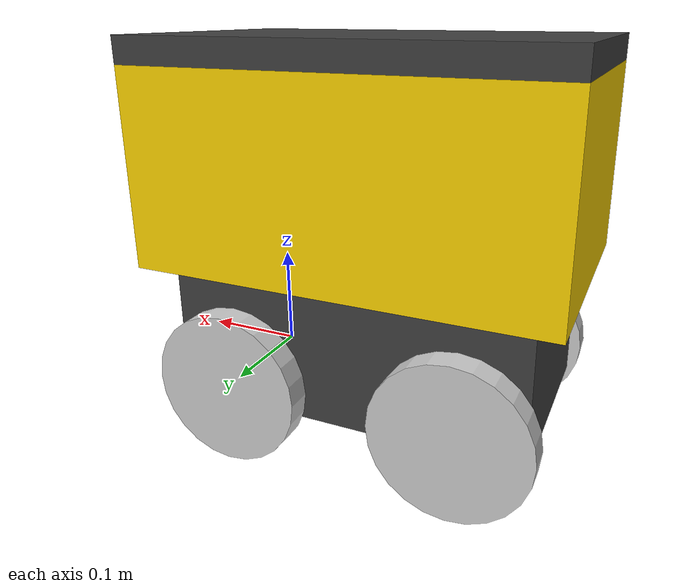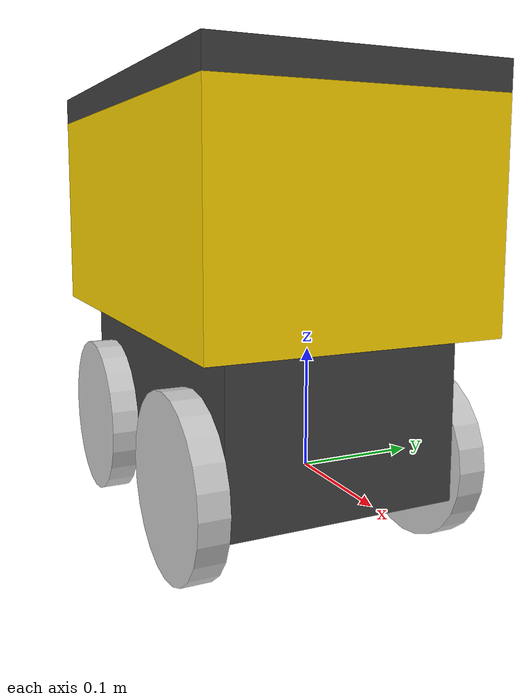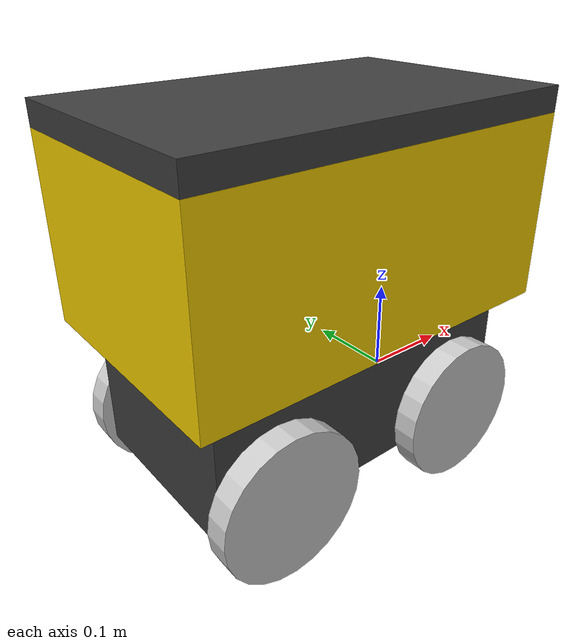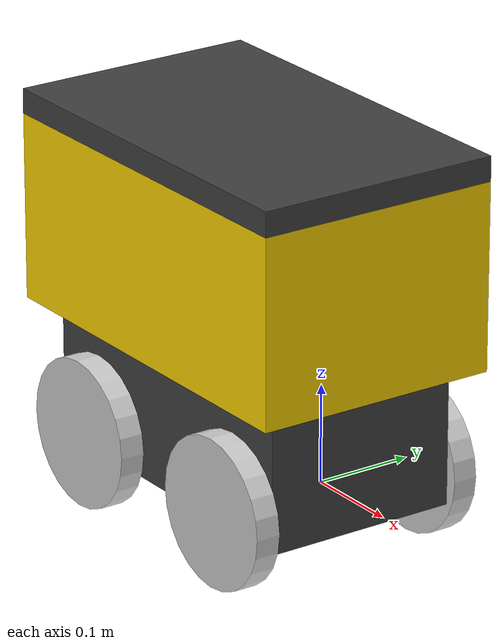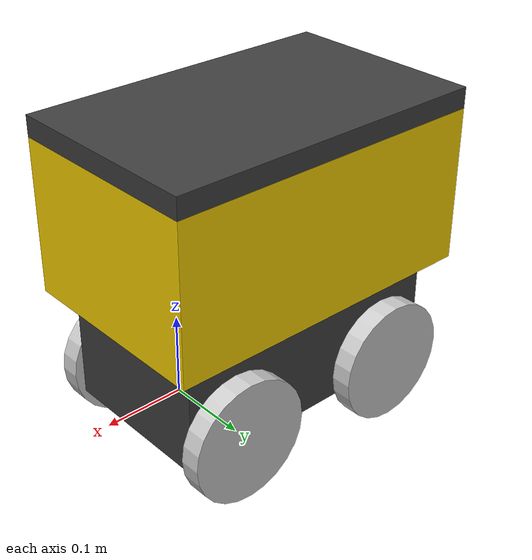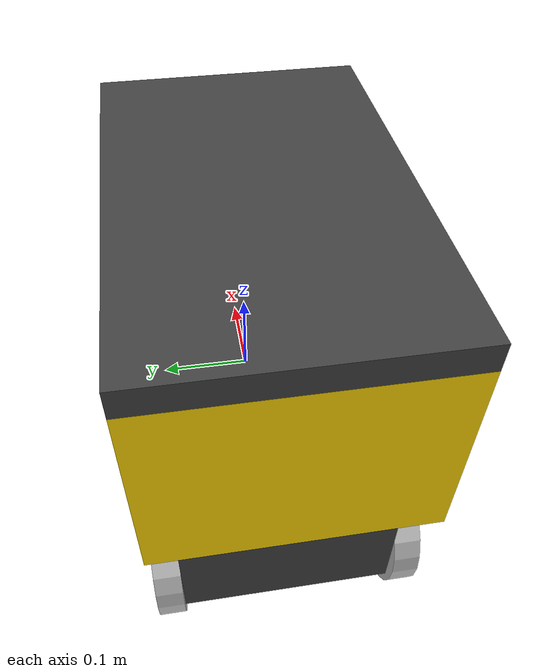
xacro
<?xml version="1.0"?>
<robot xmlns:xacro="http://www.ros.org/wiki/xacro" >

    <!-- UNITS: Metric units for everything. Kilograms for mass and Meters for length -->

    <xacro:include filename="inertial_macros.xacro"/>

    <xacro:property name="chassis_base_length" value="0.3556"/>
    <xacro:property name="chassis_base_width" value="0.2032"/>
    <xacro:property name="chassis_base_height" value="0.1397"/>
    <xacro:property name="chassis_base_mass" value="1.0"/>
    <xacro:property name="chassis_top_length" value="0.4064"/>
    <xacro:property name="chassis_top_width" value="0.254"/>
    <xacro:property name="chassis_top_height" value="0.1905"/>
    <xacro:property name="chassis_top_mass" value="1.0"/>
    <xacro:property name="lid_thickness" value="0.0254"/>
    <xacro:property name="wheel_radius" value="0.0762"/>
    <xacro:property name="wheel_thickness" value="0.0254"/>
    <xacro:property name="wheel_mass" value="0.05"/>
    <xacro:property name="front_wheel_offset_x" value="0.22733"/>
    <xacro:property name="back_wheel_offset_x" value="0.291465"/>
    <xacro:property name="wheel_offset_y" value="0.1143"/>
    <xacro:property name="wheel_offset_z" value="0.026035"/>

    <material name="white">
        <color rgba="1 1 1 1" />
    </material>

    <material name="orange">
        <color rgba="1 0.3 0.1 1"/>
    </material>

    <material name="blue">
        <color rgba="0.2 0.2 1 1"/>
    </material>

    <material name="black">
        <color rgba="0.25 0.25 0.25 1"/>
    </material>

    <material name="red">
        <color rgba="1 0 0 1"/>
    </material>

    <material name="gray">
        <color rgba="0.8 0.8 0.8 1"/>
    </material>

    <material name="gold">
        <color rgba="1 0.84 0 1"/>
    </material>

    <!-- BASE LINK -->

    <link name="base_link">

    </link>

    <!-- BASE_FOOTPRINT LINK -->

    <joint name="base_footprint_joint" type="fixed">
        <parent link="base_link"/>
        <child link="base_footprint"/>
        <origin xyz="0 0 0" rpy="0 0 0"/>
    </joint>

    <link name="base_footprint">
    </link>

    <!-- CHASSIS BASE LINK -->

    <joint name="chassis_base_joint" type="fixed">
        <parent link="base_link"/>
        <child link="chassis_base"/>
        <!-- change this so that the origin is on the complete back wall -->
        <origin xyz="${-back_wheel_offset_x} 0 ${-wheel_offset_z}"/>
    </joint>

    <link name="chassis_base">
        <visual>
            <origin xyz="${chassis_base_length/2} 0 ${chassis_base_height/2}"/>
            <geometry>
                <box size="${chassis_base_length} ${chassis_base_width} ${chassis_base_height}"/>
            </geometry>
            <material name="black"/>
        </visual>
        <collision>
            <origin xyz="${chassis_base_length/2} 0 ${chassis_base_height/2}"/>
            <geometry>
                <box size="${chassis_base_length} ${chassis_base_width} ${chassis_base_height}"/>
            </geometry>
        </collision>
        <xacro:inertial_box mass="0.5" x="${chassis_base_length}" y="${chassis_base_width}" z="${chassis_base_height}">
            <!-- origin should match visual origin -->
            <origin xyz="${chassis_base_length/2} 0 ${chassis_base_height/2}" rpy="0 0 0"/>
        </xacro:inertial_box>
    </link>

    <gazebo reference="chassis_base">
        <material>Gazebo/Black</material>
    </gazebo>

    <!-- CHASSIS TOP LINK -->

    <joint name="chassis_top_joint" type="fixed">
        <origin xyz="${chassis_base_length/2} 0 ${chassis_base_height}" rpy="0 0 0" />
        <parent link="chassis_base"/>
        <child link="chassis_top"/>
    </joint>

    <link name="chassis_top">
        <visual>
            <origin xyz="0 0 ${chassis_top_height/2}"/>
            <geometry>
                <box size="${chassis_top_length} ${chassis_top_width} ${chassis_top_height}" />
            </geometry>
            <material name="gold" />
        </visual>
        <collision>
            <origin xyz="0 0 0" rpy="0 0 0" />
            <geometry>
                <box size="${chassis_top_length} ${chassis_top_width} ${chassis_top_height}" />
            </geometry>
        </collision>
    </link>

    <gazebo reference="chassis_top">
        <material>Gazebo/Gold</material>
    </gazebo>

    <!-- LID LINK -->

    <joint name="lid_joint" type="fixed">
        <origin xyz="0 0 ${chassis_top_height}" />
        <parent link="chassis_top"/>
        <child link="lid"/>
    </joint>

    <link name="lid">
        <visual>
            <origin xyz="0 0 ${lid_thickness/2}" />
            <geometry>
                <box size="${chassis_top_length} ${chassis_top_width} ${lid_thickness}" />
            </geometry>
            <material name="black" />
        </visual>
        <collision>
            <origin xyz="0 0 ${lid_thickness}" />
            <geometry>
                <box size="${chassis_top_length} ${chassis_top_width} ${lid_thickness}" />
            </geometry>
        </collision>
    </link>

    <gazebo reference="lid">
        <material>Gazebo/Black</material>
    </gazebo>

    <!-- FRONT LEFT WHEEL LINK -->

    <joint name="front_left_wheel_joint" type="continuous">
        <parent link="base_link"/>
        <child link="front_left_wheel"/>
        <origin xyz="0 ${wheel_offset_y} 0" rpy="-${pi/2} 0 0" />
        <axis xyz="0 0 1"/>
    </joint>

    <link name="front_left_wheel">
        <visual>
            <geometry>
                <cylinder radius="${wheel_radius}" length="${wheel_thickness}"/>
            </geometry>
            <material name="gray"/>
        </visual>
        <collision>
            <geometry>
                <sphere radius="${wheel_radius}"/>
            </geometry>
        </collision>
        <xacro:inertial_cylinder mass="${wheel_mass}" length="${wheel_thickness}" radius="${wheel_radius}">
            <!-- origin should match visual origin -->
            <origin xyz="0 0 0" rpy="0 0 0"/>
        </xacro:inertial_cylinder>
    </link>

    <gazebo reference="front_left_wheel">
        <material>Gazebo/Gray</material>
    </gazebo>

    <!-- BACK LEFT WHEEL LINK -->

    <joint name="back_left_wheel_joint" type="continuous">
        <parent link="base_link"/>
        <child link="back_left_wheel"/>
        <origin xyz="${-front_wheel_offset_x} ${wheel_offset_y} 0" rpy="-${pi/2} 0 0" />
        <axis xyz="0 0 1"/>
    </joint>

    <link name="back_left_wheel">
        <visual>
            <geometry>
                <cylinder radius="${wheel_radius}" length="${wheel_thickness}"/>
            </geometry>
            <material name="gray"/>
        </visual>
        <collision>
            <geometry>
                <sphere radius="${wheel_radius}"/>
            </geometry>
        </collision>
        <xacro:inertial_cylinder mass="${wheel_mass}" length="${wheel_thickness}" radius="${wheel_radius}">
            <!-- origin should match visual origin -->
            <origin xyz="0 0 0" rpy="0 0 0"/>
        </xacro:inertial_cylinder>
    </link>

    <gazebo reference="back_left_wheel">
        <material>Gazebo/Gray</material>
    </gazebo>

    <!-- FRONT RIGHT WHEEL LINK -->

    <joint name="front_right_wheel_joint" type="continuous">
        <parent link="base_link"/>
        <child link="front_right_wheel"/>
        <origin xyz="0 ${-wheel_offset_y} 0" rpy="${pi/2} 0 0" />
        <axis xyz="0 0 -1"/>
    </joint>

    <link name="front_right_wheel">
        <visual>
            <geometry>
                <cylinder radius="${wheel_radius}" length="${wheel_thickness}"/>
            </geometry>
            <material name="gray"/>
        </visual>
        <collision>
            <geometry>
                <sphere radius="${wheel_radius}"/>
            </geometry>
        </collision>
        <xacro:inertial_cylinder mass="${wheel_mass}" length="${wheel_thickness}" radius="${wheel_radius}">
            <!-- origin should match visual origin -->
            <origin xyz="0 0 0" rpy="0 0 0"/>
        </xacro:inertial_cylinder>
    </link>

    <gazebo reference="front_right_wheel">
        <material>Gazebo/Gray</material>
    </gazebo>

    <!-- BACK RIGHT WHEEL LINK -->

    <joint name="back_right_wheel_joint" type="continuous">
        <parent link="base_link"/>
        <child link="back_right_wheel"/>
        <origin xyz="${-front_wheel_offset_x} ${-wheel_offset_y} 0" rpy="${pi/2} 0 0" />
        <axis xyz="0 0 -1"/>
    </joint>

    <link name="back_right_wheel">
        <visual>
            <geometry>
                <cylinder radius="${wheel_radius}" length="${wheel_thickness}"/>
            </geometry>
            <material name="gray"/>
        </visual>
        <collision>
            <geometry>
                <sphere radius="${wheel_radius}"/>
            </geometry>
        </collision>
        <xacro:inertial_cylinder mass="${wheel_mass}" length="${wheel_thickness}" radius="${wheel_radius}">
            <!-- origin should match visual origin -->
            <origin xyz="0 0 0" rpy="0 0 0"/>
        </xacro:inertial_cylinder>
    </link>

    <gazebo reference="back_right_wheel">
        <material>Gazebo/Gray</material>
    </gazebo>

</robot>
